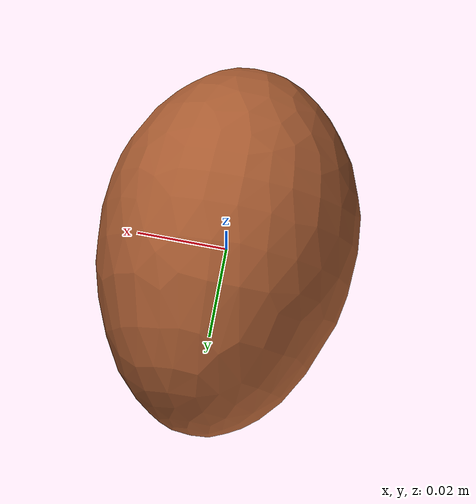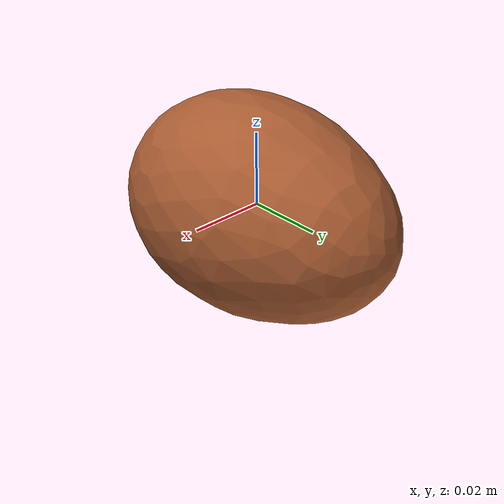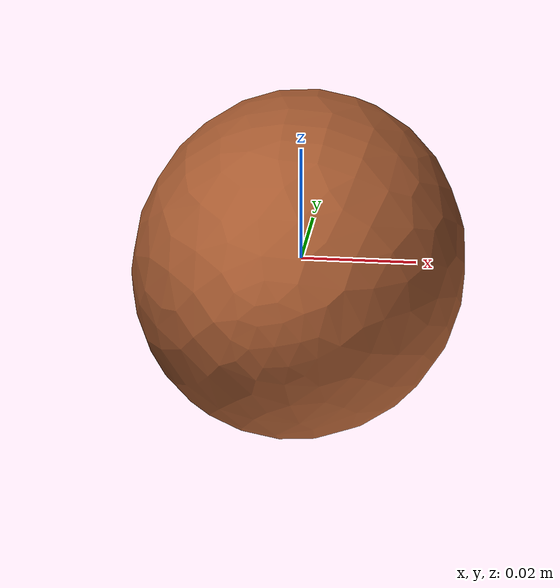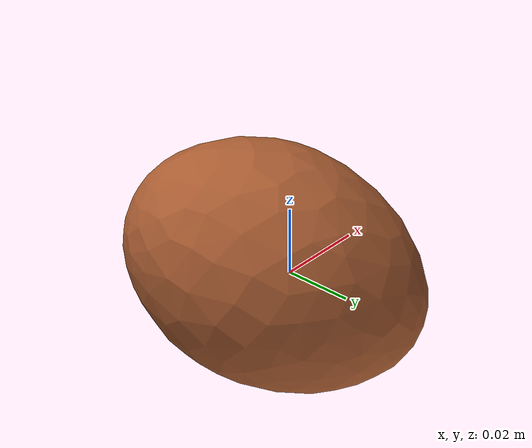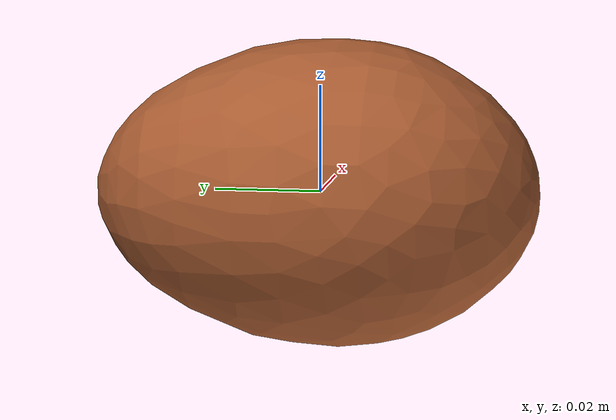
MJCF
<mujoco model="Egg_21">
  <compiler autolimits="true" boundmass="0.01" angle="radian"/>
  <default>
    <default class="/">
      <default class="__VISUAL_MJT__">
        <geom contype="0" conaffinity="0" group="0"/>
      </default>
      <default class="__STRUCTURAL_MJT__">
        <geom contype="8" conaffinity="15" group="4" friction="0.90000000000000002 0.90000000000000002 0.001" solref="0.025000000000000001 1" solimp="0.998 0.998 0.001"/>
      </default>
      <default class="__DYNAMIC_MJT__">
        <geom contype="1" conaffinity="15" group="4" friction="0.90000000000000002 0.90000000000000002 0.001" solref="0.025000000000000001 1" solimp="0.998 0.998 0.001"/>
      </default>
    </default>
  </default>
  <asset>
    <material name="material_Egg3_Mat" class="/" specular="0.5" shininess="0.5" rgba="0.66911770000000004 0.3643962 0.19679930000000001 1"/>
    <mesh name="Egg_21_egg_21" class="/" file="Egg_21_egg_21/Egg_21_egg_21.obj" scale="1 1 1"/>
  </asset>
  <worldbody>
    <body name="Egg_21">
      <joint name="Egg_21_free" class="/" type="free" pos="0 0 0" axis="0 0 1" stiffness="0" range="0 0" armature="0" damping="0.10000000000000001" frictionloss="0"/>
      <body name="Egg_21_egg_21" pos="-0 0 -0.0001" quat="1 0 0 0">
        <geom name="Egg_21_egg_21" class="__VISUAL_MJT__" type="mesh" material="material_Egg3_Mat" shellinertia="true" mesh="Egg_21_egg_21"/>
        <geom name="Egg_21_PrimitiveCollider_0" class="__DYNAMIC_MJT__" type="capsule" size="0.026729496195912361 0.013422852382063866" rgba="0 1 0 1" pos="-0 0 0" quat="0.70710678118654757 0.70710678118654746 0 0"/>
      </body>
    </body>
  </worldbody>
</mujoco>
